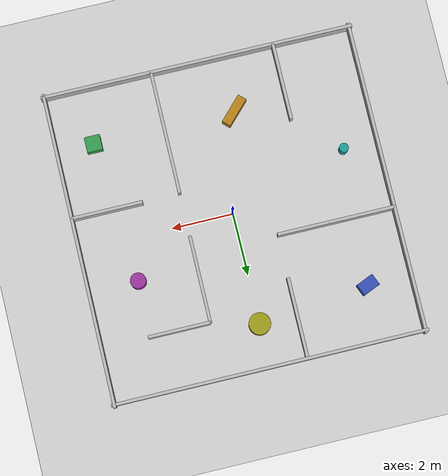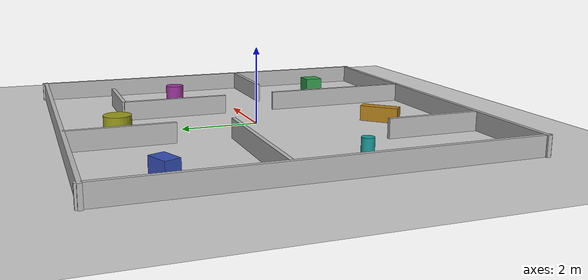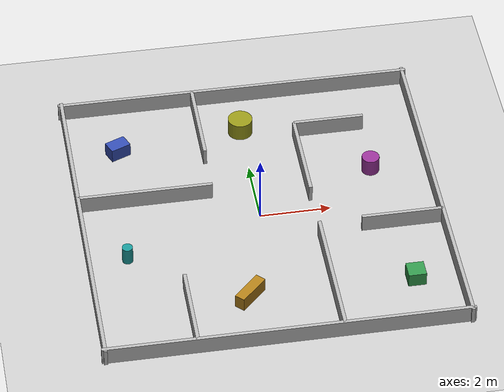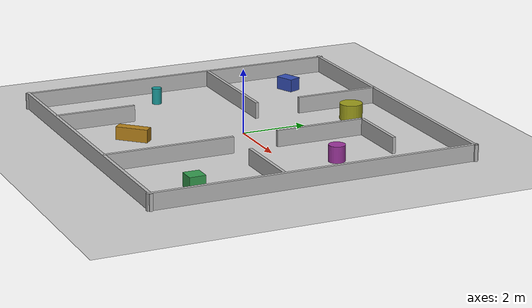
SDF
<?xml version="1.0"?>
<sdf version="1.6">
  <world name="nav_world">
    <include><uri>model://ground_plane</uri></include>
    <include><uri>model://sun</uri></include>

    <plugin name="gazebo_ros_state" filename="libgazebo_ros_state.so">
      <ros>
        <namespace>/gazebo</namespace>
      </ros>
      <update_rate>1.0</update_rate>
    </plugin>

    <model name="walls">
      <static>true</static>
      <pose>0 0 0 0 0 0</pose>
      <link name="link">
        <!-- outer -->
        <collision name="north_c"><pose>0 5.0 0.25 0 0 0</pose><geometry><box><size>10.2 0.1 0.5</size></box></geometry></collision>
        <visual name="north_v"><pose>0 5.0 0.25 0 0 0</pose><geometry><box><size>10.2 0.1 0.5</size></box></geometry></visual>
        <collision name="south_c"><pose>0 -5.0 0.25 0 0 0</pose><geometry><box><size>10.2 0.1 0.5</size></box></geometry></collision>
        <visual name="south_v"><pose>0 -5.0 0.25 0 0 0</pose><geometry><box><size>10.2 0.1 0.5</size></box></geometry></visual>
        <collision name="east_c"><pose>5.0 0 0.25 0 0 0</pose><geometry><box><size>0.1 10.2 0.5</size></box></geometry></collision>
        <visual name="east_v"><pose>5.0 0 0.25 0 0 0</pose><geometry><box><size>0.1 10.2 0.5</size></box></geometry></visual>
        <collision name="west_c"><pose>-5.0 0 0.25 0 0 0</pose><geometry><box><size>0.1 10.2 0.5</size></box></geometry></collision>
        <visual name="west_v"><pose>-5.0 0 0.25 0 0 0</pose><geometry><box><size>0.1 10.2 0.5</size></box></geometry></visual>
        <!-- NW room: south wall (y = 1.0, x -5.0..-1.2) and east wall (x = -1.2, y 2.4..5.0) -->
        <collision name="nw_south_c"><pose>-3.1 1.0 0.25 0 0 0</pose><geometry><box><size>3.8 0.1 0.5</size></box></geometry></collision>
        <visual name="nw_south_v"><pose>-3.1 1.0 0.25 0 0 0</pose><geometry><box><size>3.8 0.1 0.5</size></box></geometry></visual>
        <collision name="nw_east_c"><pose>-1.2 3.7 0.25 0 0 0</pose><geometry><box><size>0.1 2.6 0.5</size></box></geometry></collision>
        <visual name="nw_east_v"><pose>-1.2 3.7 0.25 0 0 0</pose><geometry><box><size>0.1 2.6 0.5</size></box></geometry></visual>
        <!-- East divider: x = 1.5, y -5.0..-1.0 and y 0.4..3.2 -->
        <collision name="div_south_c"><pose>1.5 -3.0 0.25 0 0 0</pose><geometry><box><size>0.1 4.0 0.5</size></box></geometry></collision>
        <visual name="div_south_v"><pose>1.5 -3.0 0.25 0 0 0</pose><geometry><box><size>0.1 4.0 0.5</size></box></geometry></visual>
        <collision name="div_north_c"><pose>1.5 1.8 0.25 0 0 0</pose><geometry><box><size>0.1 2.8 0.5</size></box></geometry></collision>
        <visual name="div_north_v"><pose>1.5 1.8 0.25 0 0 0</pose><geometry><box><size>0.1 2.8 0.5</size></box></geometry></visual>
        <!-- SE room north wall: y = -1.0, x 2.7..5.0 -->
        <collision name="se_north_c"><pose>3.85 -1.0 0.25 0 0 0</pose><geometry><box><size>2.3 0.1 0.5</size></box></geometry></collision>
        <visual name="se_north_v"><pose>3.85 -1.0 0.25 0 0 0</pose><geometry><box><size>2.3 0.1 0.5</size></box></geometry></visual>
        <!-- NE corridor stub: y = 3.2, x 1.5..3.5 -->
        <collision name="ne_stub_c"><pose>2.5 3.2 0.25 0 0 0</pose><geometry><box><size>2.0 0.1 0.5</size></box></geometry></collision>
        <visual name="ne_stub_v"><pose>2.5 3.2 0.25 0 0 0</pose><geometry><box><size>2.0 0.1 0.5</size></box></geometry></visual>
        <!-- SW alcove: x = -2.5, y -5.0..-2.5 -->
        <collision name="sw_alcove_c"><pose>-2.5 -3.75 0.25 0 0 0</pose><geometry><box><size>0.1 2.5 0.5</size></box></geometry></collision>
        <visual name="sw_alcove_v"><pose>-2.5 -3.75 0.25 0 0 0</pose><geometry><box><size>0.1 2.5 0.5</size></box></geometry></visual>
      </link>
    </model>

    <model name="box_a">
      <static>true</static>
      <pose>-3.6 3.2 0.2 0 0 0.4</pose>
      <link name="link">
        <collision name="c"><geometry><box><size>0.6 0.4 0.4</size></box></geometry></collision>
        <visual name="v"><geometry><box><size>0.6 0.4 0.4</size></box></geometry>
          <material><ambient>0.2 0.3 0.7 1</ambient><diffuse>0.2 0.3 0.7 1</diffuse></material></visual>
      </link>
    </model>

    <model name="box_b">
      <static>true</static>
      <pose>3.8 -3.2 0.2 0 0 0</pose>
      <link name="link">
        <collision name="c"><geometry><box><size>0.5 0.5 0.4</size></box></geometry></collision>
        <visual name="v"><geometry><box><size>0.5 0.5 0.4</size></box></geometry>
          <material><ambient>0.2 0.6 0.3 1</ambient><diffuse>0.2 0.6 0.3 1</diffuse></material></visual>
      </link>
    </model>

    <model name="box_c">
      <static>true</static>
      <pose>-0.8 -3.2 0.2 0 0 0.8</pose>
      <link name="link">
        <collision name="c"><geometry><box><size>1.0 0.3 0.4</size></box></geometry></collision>
        <visual name="v"><geometry><box><size>1.0 0.3 0.4</size></box></geometry>
          <material><ambient>0.7 0.5 0.1 1</ambient><diffuse>0.7 0.5 0.1 1</diffuse></material></visual>
      </link>
    </model>

    <model name="cyl_a">
      <static>true</static>
      <pose>3.4 1.4 0.25 0 0 0</pose>
      <link name="link">
        <collision name="c"><geometry><cylinder><radius>0.25</radius><length>0.5</length></cylinder></geometry></collision>
        <visual name="v"><geometry><cylinder><radius>0.25</radius><length>0.5</length></cylinder></geometry>
          <material><ambient>0.6 0.2 0.6 1</ambient><diffuse>0.6 0.2 0.6 1</diffuse></material></visual>
      </link>
    </model>

    <model name="cyl_b">
      <static>true</static>
      <pose>-3.9 -1.2 0.25 0 0 0</pose>
      <link name="link">
        <collision name="c"><geometry><cylinder><radius>0.15</radius><length>0.5</length></cylinder></geometry></collision>
        <visual name="v"><geometry><cylinder><radius>0.15</radius><length>0.5</length></cylinder></geometry>
          <material><ambient>0.1 0.6 0.6 1</ambient><diffuse>0.1 0.6 0.6 1</diffuse></material></visual>
      </link>
    </model>

    <model name="cyl_c">
      <static>true</static>
      <pose>0.0 3.6 0.25 0 0 0</pose>
      <link name="link">
        <collision name="c"><geometry><cylinder><radius>0.35</radius><length>0.5</length></cylinder></geometry></collision>
        <visual name="v"><geometry><cylinder><radius>0.35</radius><length>0.5</length></cylinder></geometry>
          <material><ambient>0.6 0.6 0.1 1</ambient><diffuse>0.6 0.6 0.1 1</diffuse></material></visual>
      </link>
    </model>

    <physics type="ode">
      <real_time_update_rate>1000.0</real_time_update_rate>
    </physics>
  </world>
</sdf>
